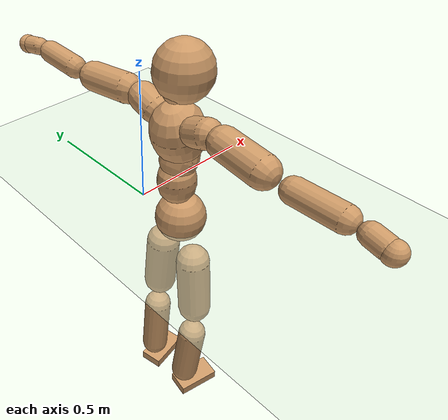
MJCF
<mujoco model="humanoid">
  <compiler coordinate="local"/>
  <default>
    <joint damping="0.0" armature="0.01" stiffness="0.0" limited="true"/>
    <geom conaffinity="1" condim="3" contype="7" margin="0.001" rgba="0.8 0.6 .4 1"/>
  </default>
  <asset>
    <texture type="skybox" builtin="gradient" rgb1=".4 .5 .6" rgb2="0 0 0" width="100" height="100"/>
    <texture builtin="flat" height="1278" mark="cross" markrgb="1 1 1" name="texgeom" random="0.01" rgb1="0.8 0.6 0.4" rgb2="0.8 0.6 0.4" type="cube" width="127"/>
    <texture builtin="checker" height="100" name="texplane" rgb1="0 0 0" rgb2="0.8 0.8 0.8" type="2d" width="100"/>
    <material name="MatPlane" reflectance="0.5" shininess="1" specular="1" texrepeat="60 60" texture="texplane"/>
    <material name="geom" texture="texgeom" texuniform="true"/>
  </asset>
  <worldbody>
    <light cutoff="100" diffuse="1 1 1" dir="-0 0 -1.3" directional="true" exponent="1" pos="0 0 1.3" specular=".1 .1 .1"/>
    <geom conaffinity="1" condim="3" name="floor" pos="0 0 0" rgba="0.8 0.9 0.8 1" size="100 100 .2" type="plane" material="MatPlane"/>
    <body name="Pelvis" pos="-0.001 -0.2067 0.0273">
      <freejoint name="Pelvis"/>
      <geom type="sphere" contype="1" conaffinity="1" density="500" size="0.0925" pos="0.0000 0.0000 0.0000" name="Pelvis"/>
      <body name="L_Hip" pos="-0.0095 0.0724 -0.0894">
        <joint name="L_Hip_x" type="hinge" pos="0 0 0" axis="1 0 0" stiffness="800" damping="80" armature="0.02" range="-180.0000 180.0000"/>
        <joint name="L_Hip_y" type="hinge" pos="0 0 0" axis="0 1 0" stiffness="800" damping="80" armature="0.02" range="-180.0000 180.0000"/>
        <joint name="L_Hip_z" type="hinge" pos="0 0 0" axis="0 0 1" stiffness="800" damping="80" armature="0.02" range="-180.0000 180.0000"/>
        <geom type="capsule" contype="1" conaffinity="1" density="500" fromto="-0.0008 0.0066 -0.0750 -0.0031 0.0264 -0.2998" size="0.0633" name="L_Hip"/>
        <body name="L_Knee" pos="-0.0039 0.033 -0.3748">
          <joint name="L_Knee_x" type="hinge" pos="0 0 0" axis="1 0 0" stiffness="800" damping="80" armature="0.02" range="-180.0000 180.0000"/>
          <joint name="L_Knee_y" type="hinge" pos="0 0 0" axis="0 1 0" stiffness="800" damping="80" armature="0.02" range="-180.0000 180.0000"/>
          <joint name="L_Knee_z" type="hinge" pos="0 0 0" axis="0 0 1" stiffness="800" damping="80" armature="0.02" range="-180.0000 180.0000"/>
          <geom type="capsule" contype="1" conaffinity="1" density="500" fromto="-0.0090 -0.0024 -0.0790 -0.0362 -0.0097 -0.3161" size="0.0544" name="L_Knee"/>
          <body name="L_Ankle" pos="-0.0452 -0.0122 -0.3952">
            <joint name="L_Ankle_x" type="hinge" pos="0 0 0" axis="1 0 0" stiffness="800" damping="80" armature="0.02" range="-180.0000 180.0000"/>
            <joint name="L_Ankle_y" type="hinge" pos="0 0 0" axis="0 1 0" stiffness="800" damping="80" armature="0.02" range="-180.0000 180.0000"/>
            <joint name="L_Ankle_z" type="hinge" pos="0 0 0" axis="0 0 1" stiffness="800" damping="80" armature="0.02" range="-180.0000 180.0000"/>
            <geom type="box" contype="1" conaffinity="1" density="500" pos="0.0588 0.0115 -0.0279" size="0.0847 0.0459 0.0203" quat="0.9954 0.0000 0.0000 0.0962" name="L_Ankle"/>
            <body name="L_Toe" pos="0.1176 0.023 -0.0558">
              <joint name="L_Toe_x" type="hinge" pos="0 0 0" axis="1 0 0" stiffness="500" damping="50" armature="0.02" range="-180.0000 180.0000"/>
              <joint name="L_Toe_y" type="hinge" pos="0 0 0" axis="0 1 0" stiffness="500" damping="50" armature="0.02" range="-180.0000 180.0000"/>
              <joint name="L_Toe_z" type="hinge" pos="0 0 0" axis="0 0 1" stiffness="500" damping="50" armature="0.02" range="-180.0000 180.0000"/>
              <geom type="box" contype="1" conaffinity="1" density="500" pos="0.0000 0.0000 0.0273" size="0.0009 0.0023 0.001" quat="0.9947 0.0000 0.0000 0.1027" name="L_Toe"/>
            </body>
          </body>
        </body>
      </body>
      <body name="R_Hip" pos="-0.0062 -0.0701 -0.0883">
        <joint name="R_Hip_x" type="hinge" pos="0 0 0" axis="1 0 0" stiffness="800" damping="80" armature="0.02" range="-180.0000 180.0000"/>
        <joint name="R_Hip_y" type="hinge" pos="0 0 0" axis="0 1 0" stiffness="800" damping="80" armature="0.02" range="-180.0000 180.0000"/>
        <joint name="R_Hip_z" type="hinge" pos="0 0 0" axis="0 0 1" stiffness="800" damping="80" armature="0.02" range="-180.0000 180.0000"/>
        <geom type="capsule" contype="1" conaffinity="1" density="500" fromto="-0.0014 -0.0077 -0.0762 -0.0055 -0.0309 -0.3050" size="0.0626" name="R_Hip"/>
        <body name="R_Knee" pos="-0.0069 -0.0386 -0.3812">
          <joint name="R_Knee_x" type="hinge" pos="0 0 0" axis="1 0 0" stiffness="800" damping="80" armature="0.02" range="-180.0000 180.0000"/>
          <joint name="R_Knee_y" type="hinge" pos="0 0 0" axis="0 1 0" stiffness="800" damping="80" armature="0.02" range="-180.0000 180.0000"/>
          <joint name="R_Knee_z" type="hinge" pos="0 0 0" axis="0 0 1" stiffness="800" damping="80" armature="0.02" range="-180.0000 180.0000"/>
          <geom type="capsule" contype="1" conaffinity="1" density="500" fromto="-0.0087 0.0028 -0.0789 -0.0349 0.0114 -0.3158" size="0.0546" name="R_Knee"/>
          <body name="R_Ankle" pos="-0.0436 0.0142 -0.3947">
            <joint name="R_Ankle_x" type="hinge" pos="0 0 0" axis="1 0 0" stiffness="800" damping="80" armature="0.02" range="-180.0000 180.0000"/>
            <joint name="R_Ankle_y" type="hinge" pos="0 0 0" axis="0 1 0" stiffness="800" damping="80" armature="0.02" range="-180.0000 180.0000"/>
            <joint name="R_Ankle_z" type="hinge" pos="0 0 0" axis="0 0 1" stiffness="800" damping="80" armature="0.02" range="-180.0000 180.0000"/>
            <geom type="box" contype="1" conaffinity="1" density="500" pos="0.0605 -0.0113 -0.0239" size="0.0855 0.0462 0.0201" quat="0.9958 0.0000 0.0000 -0.0919" name="R_Ankle"/>
            <body name="R_Toe" pos="0.1211 -0.0225 -0.0478">
              <joint name="R_Toe_x" type="hinge" pos="0 0 0" axis="1 0 0" stiffness="500" damping="50" armature="0.02" range="-180.0000 180.0000"/>
              <joint name="R_Toe_y" type="hinge" pos="0 0 0" axis="0 1 0" stiffness="500" damping="50" armature="0.02" range="-180.0000 180.0000"/>
              <joint name="R_Toe_z" type="hinge" pos="0 0 0" axis="0 0 1" stiffness="500" damping="50" armature="0.02" range="-180.0000 180.0000"/>
              <geom type="box" contype="1" conaffinity="1" density="500" pos="0.0000 0.0000 0.0257" size="0.0009 0.0023 0.0011" quat="0.9966 0.0000 0.0000 -0.0826" name="R_Toe"/>
            </body>
          </body>
        </body>
      </body>
      <body name="Torso" pos="-0.0213 -0.0025 0.1033">
        <joint name="Torso_x" type="hinge" pos="0 0 0" axis="1 0 0" stiffness="1000" damping="100" armature="0.02" range="-180.0000 180.0000"/>
        <joint name="Torso_y" type="hinge" pos="0 0 0" axis="0 1 0" stiffness="1000" damping="100" armature="0.02" range="-180.0000 180.0000"/>
        <joint name="Torso_z" type="hinge" pos="0 0 0" axis="0 0 1" stiffness="1000" damping="100" armature="0.02" range="-180.0000 180.0000"/>
        <geom type="capsule" contype="1" conaffinity="1" density="500" fromto="-0.0015 0.0021 0.0768 -0.0010 0.0014 0.0512" size="0.0674" name="Torso"/>
        <body name="Spine" pos="-0.0025 0.0034 0.128">
          <joint name="Spine_x" type="hinge" pos="0 0 0" axis="1 0 0" stiffness="1000" damping="100" armature="0.02" range="-180.0000 180.0000"/>
          <joint name="Spine_y" type="hinge" pos="0 0 0" axis="0 1 0" stiffness="1000" damping="100" armature="0.02" range="-180.0000 180.0000"/>
          <joint name="Spine_z" type="hinge" pos="0 0 0" axis="0 0 1" stiffness="1000" damping="100" armature="0.02" range="-180.0000 180.0000"/>
          <geom type="capsule" contype="1" conaffinity="1" density="500" fromto="0.0159 0.0012 0.0286 0.0106 0.0008 0.0191" size="0.0671" name="Spine"/>
          <body name="Chest" pos="0.0265 0.002 0.0477">
            <joint name="Chest_x" type="hinge" pos="0 0 0" axis="1 0 0" stiffness="1000" damping="100" armature="0.02" range="-180.0000 180.0000"/>
            <joint name="Chest_y" type="hinge" pos="0 0 0" axis="0 1 0" stiffness="1000" damping="100" armature="0.02" range="-180.0000 180.0000"/>
            <joint name="Chest_z" type="hinge" pos="0 0 0" axis="0 0 1" stiffness="1000" damping="100" armature="0.02" range="-180.0000 180.0000"/>
            <geom type="capsule" contype="1" conaffinity="1" density="500" fromto="-0.0246 -0.0008 0.0879 -0.0164 -0.0005 0.0586" size="0.0911" name="Chest"/>
            <body name="Neck" pos="-0.0484 -0.0025 0.2075">
              <joint name="Neck_x" type="hinge" pos="0 0 0" axis="1 0 0" stiffness="500" damping="50" armature="0.02" range="-180.0000 180.0000"/>
              <joint name="Neck_y" type="hinge" pos="0 0 0" axis="0 1 0" stiffness="500" damping="50" armature="0.02" range="-180.0000 180.0000"/>
              <joint name="Neck_z" type="hinge" pos="0 0 0" axis="0 0 1" stiffness="500" damping="50" armature="0.02" range="-180.0000 180.0000"/>
              <geom type="capsule" contype="1" conaffinity="1" density="500" fromto="0.0095 0.0008 0.0121 0.0380 0.0031 0.0485" size="0.0403" name="Neck"/>
              <body name="Head" pos="0.0475 0.0038 0.0606">
                <joint name="Head_x" type="hinge" pos="0 0 0" axis="1 0 0" stiffness="500" damping="50" armature="0.02" range="-180.0000 180.0000"/>
                <joint name="Head_y" type="hinge" pos="0 0 0" axis="0 1 0" stiffness="500" damping="50" armature="0.02" range="-180.0000 180.0000"/>
                <joint name="Head_z" type="hinge" pos="0 0 0" axis="0 0 1" stiffness="500" damping="50" armature="0.02" range="-180.0000 180.0000"/>
                <geom type="sphere" contype="1" conaffinity="1" density="500" size="0.0969" pos="0.0000 0.0000 0.0000" name="Head"/>
              </body>
            </body>
            <body name="L_Thorax" pos="-0.035 0.0734 0.1169">
              <joint name="L_Thorax_x" type="hinge" pos="0 0 0" axis="1 0 0" stiffness="500" damping="50" armature="0.02" range="-180.0000 180.0000"/>
              <joint name="L_Thorax_y" type="hinge" pos="0 0 0" axis="0 1 0" stiffness="500" damping="50" armature="0.02" range="-180.0000 180.0000"/>
              <joint name="L_Thorax_z" type="hinge" pos="0 0 0" axis="0 0 1" stiffness="500" damping="50" armature="0.02" range="-180.0000 180.0000"/>
              <geom type="capsule" contype="1" conaffinity="1" density="500" fromto="-0.0011 0.0171 0.0068 -0.0046 0.0685 0.0272" size="0.0494" name="L_Thorax"/>
              <body name="L_Shoulder" pos="-0.0057 0.0856 0.0341">
                <joint name="L_Shoulder_x" type="hinge" pos="0 0 0" axis="1 0 0" stiffness="500" damping="50" armature="0.02" range="-720.0000 720.0000"/>
                <joint name="L_Shoulder_y" type="hinge" pos="0 0 0" axis="0 1 0" stiffness="500" damping="50" armature="0.02" range="-720.0000 720.0000"/>
                <joint name="L_Shoulder_z" type="hinge" pos="0 0 0" axis="0 0 1" stiffness="500" damping="50" armature="0.02" range="-720.0000 720.0000"/>
                <geom type="capsule" contype="1" conaffinity="1" density="500" fromto="-0.0056 0.0521 -0.0031 -0.0225 0.2083 -0.0126" size="0.0502" name="L_Shoulder"/>
                <body name="L_Elbow" pos="-0.0281 0.2604 -0.0157">
                  <joint name="L_Elbow_x" type="hinge" pos="0 0 0" axis="1 0 0" stiffness="500" damping="50" armature="0.02" range="-720.0000 720.0000"/>
                  <joint name="L_Elbow_y" type="hinge" pos="0 0 0" axis="0 1 0" stiffness="500" damping="50" armature="0.02" range="-720.0000 720.0000"/>
                  <joint name="L_Elbow_z" type="hinge" pos="0 0 0" axis="0 0 1" stiffness="500" damping="50" armature="0.02" range="-720.0000 720.0000"/>
                  <geom type="capsule" contype="1" conaffinity="1" density="500" fromto="0.0001 0.0502 0.0020 0.0005 0.2008 0.0078" size="0.039" name="L_Elbow"/>
                  <body name="L_Wrist" pos="0.0007 0.251 0.0098">
                    <joint name="L_Wrist_x" type="hinge" pos="0 0 0" axis="1 0 0" stiffness="300" damping="30" armature="0.02" range="-180.0000 180.0000"/>
                    <joint name="L_Wrist_y" type="hinge" pos="0 0 0" axis="0 1 0" stiffness="300" damping="30" armature="0.02" range="-180.0000 180.0000"/>
                    <joint name="L_Wrist_z" type="hinge" pos="0 0 0" axis="0 0 1" stiffness="300" damping="30" armature="0.02" range="-180.0000 180.0000"/>
                    <geom type="capsule" contype="1" conaffinity="1" density="500" fromto="-0.0028 0.0166 -0.0021 -0.0110 0.0664 -0.0082" size="0.031" name="L_Wrist"/>
                    <body name="L_Hand" pos="-0.0138 0.083 -0.0103">
                      <joint name="L_Hand_x" type="hinge" pos="0 0 0" axis="1 0 0" stiffness="300" damping="30" armature="0.02" range="-180.0000 180.0000"/>
                      <joint name="L_Hand_y" type="hinge" pos="0 0 0" axis="0 1 0" stiffness="300" damping="30" armature="0.02" range="-180.0000 180.0000"/>
                      <joint name="L_Hand_z" type="hinge" pos="0 0 0" axis="0 0 1" stiffness="300" damping="30" armature="0.02" range="-180.0000 180.0000"/>
                      <geom type="sphere" contype="1" conaffinity="1" density="500" size="0.0333" pos="0.0000 0.0000 0.0000" name="L_Hand"/>
                    </body>
                  </body>
                </body>
              </body>
            </body>
            <body name="R_Thorax" pos="-0.0396 -0.075 0.1151">
              <joint name="R_Thorax_x" type="hinge" pos="0 0 0" axis="1 0 0" stiffness="500" damping="50" armature="0.02" range="-180.0000 180.0000"/>
              <joint name="R_Thorax_y" type="hinge" pos="0 0 0" axis="0 1 0" stiffness="500" damping="50" armature="0.02" range="-180.0000 180.0000"/>
              <joint name="R_Thorax_z" type="hinge" pos="0 0 0" axis="0 0 1" stiffness="500" damping="50" armature="0.02" range="-180.0000 180.0000"/>
              <geom type="capsule" contype="1" conaffinity="1" density="500" fromto="-0.0016 -0.0179 0.0069 -0.0063 -0.0716 0.0276" size="0.0482" name="R_Thorax"/>
              <body name="R_Shoulder" pos="-0.0079 -0.0895 0.0345">
                <joint name="R_Shoulder_x" type="hinge" pos="0 0 0" axis="1 0 0" stiffness="500" damping="50" armature="0.02" range="-720.0000 720.0000"/>
                <joint name="R_Shoulder_y" type="hinge" pos="0 0 0" axis="0 1 0" stiffness="500" damping="50" armature="0.02" range="-720.0000 720.0000"/>
                <joint name="R_Shoulder_z" type="hinge" pos="0 0 0" axis="0 0 1" stiffness="500" damping="50" armature="0.02" range="-720.0000 720.0000"/>
                <geom type="capsule" contype="1" conaffinity="1" density="500" fromto="-0.0040 -0.0511 -0.0030 -0.0161 -0.2045 -0.0121" size="0.0513" name="R_Shoulder"/>
                <body name="R_Elbow" pos="-0.0201 -0.2557 -0.0151">
                  <joint name="R_Elbow_x" type="hinge" pos="0 0 0" axis="1 0 0" stiffness="500" damping="50" armature="0.02" range="-720.0000 720.0000"/>
                  <joint name="R_Elbow_y" type="hinge" pos="0 0 0" axis="0 1 0" stiffness="500" damping="50" armature="0.02" range="-720.0000 720.0000"/>
                  <joint name="R_Elbow_z" type="hinge" pos="0 0 0" axis="0 0 1" stiffness="500" damping="50" armature="0.02" range="-720.0000 720.0000"/>
                  <geom type="capsule" contype="1" conaffinity="1" density="500" fromto="-0.0007 -0.0513 0.0017 -0.0028 -0.2052 0.0066" size="0.0387" name="R_Elbow"/>
                  <body name="R_Wrist" pos="-0.0035 -0.2565 0.0083">
                    <joint name="R_Wrist_x" type="hinge" pos="0 0 0" axis="1 0 0" stiffness="300" damping="30" armature="0.02" range="-180.0000 180.0000"/>
                    <joint name="R_Wrist_y" type="hinge" pos="0 0 0" axis="0 1 0" stiffness="300" damping="30" armature="0.02" range="-180.0000 180.0000"/>
                    <joint name="R_Wrist_z" type="hinge" pos="0 0 0" axis="0 0 1" stiffness="300" damping="30" armature="0.02" range="-180.0000 180.0000"/>
                    <geom type="capsule" contype="1" conaffinity="1" density="500" fromto="-0.0022 -0.0167 -0.0015 -0.0087 -0.0668 -0.0061" size="0.0316" name="R_Wrist"/>
                    <body name="R_Hand" pos="-0.0109 -0.0835 -0.0076">
                      <joint name="R_Hand_x" type="hinge" pos="0 0 0" axis="1 0 0" stiffness="300" damping="30" armature="0.02" range="-180.0000 180.0000"/>
                      <joint name="R_Hand_y" type="hinge" pos="0 0 0" axis="0 1 0" stiffness="300" damping="30" armature="0.02" range="-180.0000 180.0000"/>
                      <joint name="R_Hand_z" type="hinge" pos="0 0 0" axis="0 0 1" stiffness="300" damping="30" armature="0.02" range="-180.0000 180.0000"/>
                      <geom type="sphere" contype="1" conaffinity="1" density="500" size="0.0334" pos="0.0000 0.0000 0.0000" name="R_Hand"/>
                    </body>
                  </body>
                </body>
              </body>
            </body>
          </body>
        </body>
      </body>
    </body>
  </worldbody>
  <actuator>
    <motor name="L_Hip_x" joint="L_Hip_x" gear="500"/>
    <motor name="L_Hip_y" joint="L_Hip_y" gear="500"/>
    <motor name="L_Hip_z" joint="L_Hip_z" gear="500"/>
    <motor name="L_Knee_x" joint="L_Knee_x" gear="500"/>
    <motor name="L_Knee_y" joint="L_Knee_y" gear="500"/>
    <motor name="L_Knee_z" joint="L_Knee_z" gear="500"/>
    <motor name="L_Ankle_x" joint="L_Ankle_x" gear="500"/>
    <motor name="L_Ankle_y" joint="L_Ankle_y" gear="500"/>
    <motor name="L_Ankle_z" joint="L_Ankle_z" gear="500"/>
    <motor name="L_Toe_x" joint="L_Toe_x" gear="500"/>
    <motor name="L_Toe_y" joint="L_Toe_y" gear="500"/>
    <motor name="L_Toe_z" joint="L_Toe_z" gear="500"/>
    <motor name="R_Hip_x" joint="R_Hip_x" gear="500"/>
    <motor name="R_Hip_y" joint="R_Hip_y" gear="500"/>
    <motor name="R_Hip_z" joint="R_Hip_z" gear="500"/>
    <motor name="R_Knee_x" joint="R_Knee_x" gear="500"/>
    <motor name="R_Knee_y" joint="R_Knee_y" gear="500"/>
    <motor name="R_Knee_z" joint="R_Knee_z" gear="500"/>
    <motor name="R_Ankle_x" joint="R_Ankle_x" gear="500"/>
    <motor name="R_Ankle_y" joint="R_Ankle_y" gear="500"/>
    <motor name="R_Ankle_z" joint="R_Ankle_z" gear="500"/>
    <motor name="R_Toe_x" joint="R_Toe_x" gear="500"/>
    <motor name="R_Toe_y" joint="R_Toe_y" gear="500"/>
    <motor name="R_Toe_z" joint="R_Toe_z" gear="500"/>
    <motor name="Torso_x" joint="Torso_x" gear="500"/>
    <motor name="Torso_y" joint="Torso_y" gear="500"/>
    <motor name="Torso_z" joint="Torso_z" gear="500"/>
    <motor name="Spine_x" joint="Spine_x" gear="500"/>
    <motor name="Spine_y" joint="Spine_y" gear="500"/>
    <motor name="Spine_z" joint="Spine_z" gear="500"/>
    <motor name="Chest_x" joint="Chest_x" gear="500"/>
    <motor name="Chest_y" joint="Chest_y" gear="500"/>
    <motor name="Chest_z" joint="Chest_z" gear="500"/>
    <motor name="Neck_x" joint="Neck_x" gear="500"/>
    <motor name="Neck_y" joint="Neck_y" gear="500"/>
    <motor name="Neck_z" joint="Neck_z" gear="500"/>
    <motor name="Head_x" joint="Head_x" gear="500"/>
    <motor name="Head_y" joint="Head_y" gear="500"/>
    <motor name="Head_z" joint="Head_z" gear="500"/>
    <motor name="L_Thorax_x" joint="L_Thorax_x" gear="500"/>
    <motor name="L_Thorax_y" joint="L_Thorax_y" gear="500"/>
    <motor name="L_Thorax_z" joint="L_Thorax_z" gear="500"/>
    <motor name="L_Shoulder_x" joint="L_Shoulder_x" gear="500"/>
    <motor name="L_Shoulder_y" joint="L_Shoulder_y" gear="500"/>
    <motor name="L_Shoulder_z" joint="L_Shoulder_z" gear="500"/>
    <motor name="L_Elbow_x" joint="L_Elbow_x" gear="500"/>
    <motor name="L_Elbow_y" joint="L_Elbow_y" gear="500"/>
    <motor name="L_Elbow_z" joint="L_Elbow_z" gear="500"/>
    <motor name="L_Wrist_x" joint="L_Wrist_x" gear="500"/>
    <motor name="L_Wrist_y" joint="L_Wrist_y" gear="500"/>
    <motor name="L_Wrist_z" joint="L_Wrist_z" gear="500"/>
    <motor name="L_Hand_x" joint="L_Hand_x" gear="500"/>
    <motor name="L_Hand_y" joint="L_Hand_y" gear="500"/>
    <motor name="L_Hand_z" joint="L_Hand_z" gear="500"/>
    <motor name="R_Thorax_x" joint="R_Thorax_x" gear="500"/>
    <motor name="R_Thorax_y" joint="R_Thorax_y" gear="500"/>
    <motor name="R_Thorax_z" joint="R_Thorax_z" gear="500"/>
    <motor name="R_Shoulder_x" joint="R_Shoulder_x" gear="500"/>
    <motor name="R_Shoulder_y" joint="R_Shoulder_y" gear="500"/>
    <motor name="R_Shoulder_z" joint="R_Shoulder_z" gear="500"/>
    <motor name="R_Elbow_x" joint="R_Elbow_x" gear="500"/>
    <motor name="R_Elbow_y" joint="R_Elbow_y" gear="500"/>
    <motor name="R_Elbow_z" joint="R_Elbow_z" gear="500"/>
    <motor name="R_Wrist_x" joint="R_Wrist_x" gear="500"/>
    <motor name="R_Wrist_y" joint="R_Wrist_y" gear="500"/>
    <motor name="R_Wrist_z" joint="R_Wrist_z" gear="500"/>
    <motor name="R_Hand_x" joint="R_Hand_x" gear="500"/>
    <motor name="R_Hand_y" joint="R_Hand_y" gear="500"/>
    <motor name="R_Hand_z" joint="R_Hand_z" gear="500"/>
  </actuator>
  <contact>
    <exclude body1="Torso" body2="Chest"/>
    <exclude body1="Head" body2="Chest"/>
    <exclude body1="R_Knee" body2="R_Toe"/>
    <exclude body1="R_Knee" body2="L_Ankle"/>
    <exclude body1="R_Knee" body2="L_Toe"/>
    <exclude body1="L_Knee" body2="L_Toe"/>
    <exclude body1="L_Knee" body2="R_Ankle"/>
    <exclude body1="L_Knee" body2="R_Toe"/>
    <exclude body1="L_Shoulder" body2="Chest"/>
    <exclude body1="R_Shoulder" body2="Chest"/>
  </contact>
  <sensor/>
  <size njmax="700" nconmax="700"/>
</mujoco>
